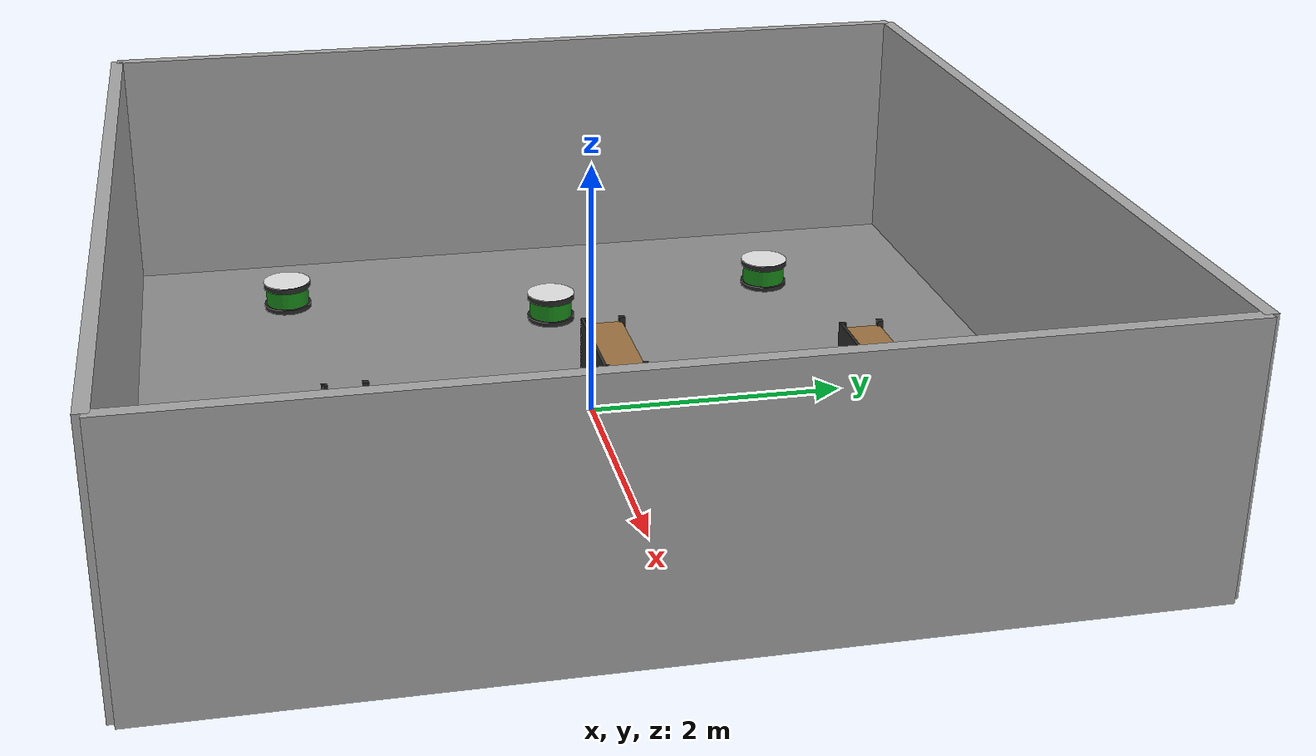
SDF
<?xml version="1.0" ?>
<sdf version="1.8">
  <world name="warehouse_world">

    <plugin filename="gz-sim-physics-system"
            name="gz::sim::systems::Physics"/>
    <plugin filename="gz-sim-user-commands-system"
            name="gz::sim::systems::UserCommands"/>
    <plugin filename="gz-sim-scene-broadcaster-system"
            name="gz::sim::systems::SceneBroadcaster"/>
    <plugin filename="gz-sim-sensors-system"
            name="gz::sim::systems::Sensors">
      <render_engine>ogre2</render_engine>
    </plugin>

    <light name="sun_light" type="directional">
      <pose>0 0 10 0 0 0</pose>
      <cast_shadows>false</cast_shadows>
      <diffuse>1 1 1 1</diffuse>
      <specular>0.2 0.2 0.2 1</specular>
      <direction>0 0 -1</direction>
      <attenuation>
        <range>100</range>
        <constant>0.9</constant>
        <linear>0.01</linear>
        <quadratic>0.001</quadratic>
      </attenuation>
    </light>

    <scene>
      <ambient>0.45 0.45 0.45 1</ambient>
      <background>0.75 0.75 0.75 1</background>
      <shadows>false</shadows>
    </scene>

    <model name="floor">
      <static>true</static>
      <pose>0 0 -0.01 0 0 0</pose>
      <link name="link">
        <collision name="collision">
          <geometry><box><size>7 7 0.02</size></box></geometry>
        </collision>
        <visual name="visual">
          <cast_shadows>false</cast_shadows>
                    <pose>0 0 0.011 0 0 0</pose>
          <geometry><box><size>7 7 0.02</size></box></geometry>
          <material>
            <ambient>0.55 0.55 0.55 1</ambient>
            <diffuse>0.55 0.55 0.55 1</diffuse>
          </material>
        </visual>

        <!-- Visual-only warehouse floor markings (collision unchanged) -->
        <visual name="floor_line_center">
          <cast_shadows>false</cast_shadows>
          <pose>0 0 0.012 0 0 0</pose>
          <geometry><box><size>7 0.05 0.002</size></box></geometry>
          <material><ambient>0.95 0.85 0.15 1</ambient><diffuse>0.95 0.85 0.15 1</diffuse></material>
        </visual>
        <visual name="floor_line_y_pos">
          <cast_shadows>false</cast_shadows>
          <pose>0 1.5 0.012 0 0 0</pose>
          <geometry><box><size>7 0.04 0.002</size></box></geometry>
          <material><ambient>0.95 0.95 0.95 1</ambient><diffuse>0.95 0.95 0.95 1</diffuse></material>
        </visual>
        <visual name="floor_line_y_neg">
          <cast_shadows>false</cast_shadows>
          <pose>0 -1.5 0.012 0 0 0</pose>
          <geometry><box><size>7 0.04 0.002</size></box></geometry>
          <material><ambient>0.95 0.95 0.95 1</ambient><diffuse>0.95 0.95 0.95 1</diffuse></material>
        </visual>
        <!-- Expansion joint seams -->
        <visual name="floor_seam_x_1">
          <cast_shadows>false</cast_shadows>
          <pose>-2.333 0 0.0105 0 0 0</pose>
          <geometry><box><size>0.01 7 0.001</size></box></geometry>
          <material><ambient>0.35 0.35 0.35 1</ambient><diffuse>0.35 0.35 0.35 1</diffuse></material>
        </visual>
        <visual name="floor_seam_x_2">
          <cast_shadows>false</cast_shadows>
          <pose>0 0 0.0105 0 0 0</pose>
          <geometry><box><size>0.01 7 0.001</size></box></geometry>
          <material><ambient>0.35 0.35 0.35 1</ambient><diffuse>0.35 0.35 0.35 1</diffuse></material>
        </visual>
        <visual name="floor_seam_x_3">
          <cast_shadows>false</cast_shadows>
          <pose>2.333 0 0.0105 0 0 0</pose>
          <geometry><box><size>0.01 7 0.001</size></box></geometry>
          <material><ambient>0.35 0.35 0.35 1</ambient><diffuse>0.35 0.35 0.35 1</diffuse></material>
        </visual>
</link>
    </model>

    <model name="wall_back">
      <static>true</static>
      <pose>0 3.5 1.0 0 0 0</pose>
      <link name="link">
        <collision name="collision"><geometry><box><size>7 0.1 2.0</size></box></geometry></collision>
        <visual name="visual">
          <cast_shadows>false</cast_shadows>
          <geometry><box><size>7 0.1 2.0</size></box></geometry>
          <material>
            <ambient>0.65 0.65 0.65 0.95</ambient>
            <diffuse>0.65 0.65 0.65 0.95</diffuse>
          </material>
        </visual>
      </link>
    </model>
    <model name="wall_front">
      <static>true</static>
      <pose>0 -3.5 1.0 0 0 0</pose>
      <link name="link">
        <collision name="collision"><geometry><box><size>7 0.1 2.0</size></box></geometry></collision>
        <visual name="visual">
          <cast_shadows>false</cast_shadows>
          <geometry><box><size>7 0.1 2.0</size></box></geometry>
          <material>
            <ambient>0.65 0.65 0.65 0.95</ambient>
            <diffuse>0.65 0.65 0.65 0.95</diffuse>
          </material>
        </visual>
      </link>
    </model>
    <model name="wall_left">
      <static>true</static>
      <pose>-3.5 0 1.0 0 0 0</pose>
      <link name="link">
        <collision name="collision"><geometry><box><size>0.1 7 2.0</size></box></geometry></collision>
        <visual name="visual">
          <cast_shadows>false</cast_shadows>
          <geometry><box><size>0.1 7 2.0</size></box></geometry>
          <material>
            <ambient>0.65 0.65 0.65 0.95</ambient>
            <diffuse>0.65 0.65 0.65 0.95</diffuse>
          </material>
        </visual>
      </link>
    </model>
    <model name="wall_right">
      <static>true</static>
      <pose>3.5 0 1.0 0 0 0</pose>
      <link name="link">
        <collision name="collision"><geometry><box><size>0.1 7 2.0</size></box></geometry></collision>
        <visual name="visual">
          <cast_shadows>false</cast_shadows>
          <geometry><box><size>0.1 7 2.0</size></box></geometry>
          <material>
            <ambient>0.65 0.65 0.65 0.95</ambient>
            <diffuse>0.65 0.65 0.65 0.95</diffuse>
          </material>
        </visual>
      </link>
    </model>

    <model name="shelf_1">
      <static>true</static>
      <pose>2.2 1.5 0.7 0 0 0</pose>
      <link name="link">
        <collision name="collision"><geometry><box><size>0.8 0.3 1.4</size></box></geometry></collision>
        <!-- Visual-only "warehouse shelf" (collision remains unchanged to avoid remapping). -->
        <visual name="shelf_back_panel">
          <cast_shadows>false</cast_shadows>
          <pose>0 -0.14 0 0 0 0</pose>
          <geometry><box><size>0.8 0.02 1.4</size></box></geometry>
          <material><ambient>0.18 0.18 0.18 1</ambient><diffuse>0.18 0.18 0.18 1</diffuse></material>
        </visual>
        <visual name="shelf_post_fl">
          <cast_shadows>false</cast_shadows>
          <pose>0.38 0.13 0 0 0 0</pose>
          <geometry><box><size>0.04 0.04 1.4</size></box></geometry>
          <material><ambient>0.15 0.15 0.15 1</ambient><diffuse>0.15 0.15 0.15 1</diffuse></material>
        </visual>
        <visual name="shelf_post_fr">
          <cast_shadows>false</cast_shadows>
          <pose>0.38 -0.13 0 0 0 0</pose>
          <geometry><box><size>0.04 0.04 1.4</size></box></geometry>
          <material><ambient>0.15 0.15 0.15 1</ambient><diffuse>0.15 0.15 0.15 1</diffuse></material>
        </visual>
        <visual name="shelf_post_bl">
          <cast_shadows>false</cast_shadows>
          <pose>-0.38 0.13 0 0 0 0</pose>
          <geometry><box><size>0.04 0.04 1.4</size></box></geometry>
          <material><ambient>0.15 0.15 0.15 1</ambient><diffuse>0.15 0.15 0.15 1</diffuse></material>
        </visual>
        <visual name="shelf_post_br">
          <cast_shadows>false</cast_shadows>
          <pose>-0.38 -0.13 0 0 0 0</pose>
          <geometry><box><size>0.04 0.04 1.4</size></box></geometry>
          <material><ambient>0.15 0.15 0.15 1</ambient><diffuse>0.15 0.15 0.15 1</diffuse></material>
        </visual>
        <visual name="shelf_board_bottom">
          <cast_shadows>false</cast_shadows>
          <pose>0 0 -0.65 0 0 0</pose>
          <geometry><box><size>0.76 0.26 0.03</size></box></geometry>
          <material><ambient>0.62 0.45 0.25 1</ambient><diffuse>0.62 0.45 0.25 1</diffuse></material>
        </visual>
        <visual name="shelf_board_mid">
          <cast_shadows>false</cast_shadows>
          <pose>0 0 0.00 0 0 0</pose>
          <geometry><box><size>0.76 0.26 0.03</size></box></geometry>
          <material><ambient>0.62 0.45 0.25 1</ambient><diffuse>0.62 0.45 0.25 1</diffuse></material>
        </visual>
        <visual name="shelf_board_top">
          <cast_shadows>false</cast_shadows>
          <pose>0 0 0.65 0 0 0</pose>
          <geometry><box><size>0.76 0.26 0.03</size></box></geometry>
          <material><ambient>0.62 0.45 0.25 1</ambient><diffuse>0.62 0.45 0.25 1</diffuse></material>
        </visual>

        <!-- Board collisions (inside the shelf footprint) so packages don't fall through -->
        <collision name="shelf_board_bottom_collision">
          <pose>0 0 -0.65 0 0 0</pose>
          <geometry><box><size>0.76 0.26 0.03</size></box></geometry>
        </collision>
        <collision name="shelf_board_mid_collision">
          <pose>0 0 0.00 0 0 0</pose>
          <geometry><box><size>0.76 0.26 0.03</size></box></geometry>
        </collision>
        <collision name="shelf_board_top_collision">
          <pose>0 0 0.65 0 0 0</pose>
          <geometry><box><size>0.76 0.26 0.03</size></box></geometry>
        </collision>
      </link>
    </model>

    <model name="shelf_2">
      <static>true</static>
      <pose>1.8 -0.2 0.7 0 0 0</pose>
      <link name="link">
        <collision name="collision"><geometry><box><size>0.8 0.3 1.4</size></box></geometry></collision>
        <!-- Visual-only "warehouse shelf" (collision remains unchanged to avoid remapping). -->
        <visual name="shelf_back_panel">
          <cast_shadows>false</cast_shadows>
          <pose>0 -0.14 0 0 0 0</pose>
          <geometry><box><size>0.8 0.02 1.4</size></box></geometry>
          <material><ambient>0.18 0.18 0.18 1</ambient><diffuse>0.18 0.18 0.18 1</diffuse></material>
        </visual>
        <visual name="shelf_post_fl">
          <cast_shadows>false</cast_shadows>
          <pose>0.38 0.13 0 0 0 0</pose>
          <geometry><box><size>0.04 0.04 1.4</size></box></geometry>
          <material><ambient>0.15 0.15 0.15 1</ambient><diffuse>0.15 0.15 0.15 1</diffuse></material>
        </visual>
        <visual name="shelf_post_fr">
          <cast_shadows>false</cast_shadows>
          <pose>0.38 -0.13 0 0 0 0</pose>
          <geometry><box><size>0.04 0.04 1.4</size></box></geometry>
          <material><ambient>0.15 0.15 0.15 1</ambient><diffuse>0.15 0.15 0.15 1</diffuse></material>
        </visual>
        <visual name="shelf_post_bl">
          <cast_shadows>false</cast_shadows>
          <pose>-0.38 0.13 0 0 0 0</pose>
          <geometry><box><size>0.04 0.04 1.4</size></box></geometry>
          <material><ambient>0.15 0.15 0.15 1</ambient><diffuse>0.15 0.15 0.15 1</diffuse></material>
        </visual>
        <visual name="shelf_post_br">
          <cast_shadows>false</cast_shadows>
          <pose>-0.38 -0.13 0 0 0 0</pose>
          <geometry><box><size>0.04 0.04 1.4</size></box></geometry>
          <material><ambient>0.15 0.15 0.15 1</ambient><diffuse>0.15 0.15 0.15 1</diffuse></material>
        </visual>
        <visual name="shelf_board_bottom">
          <cast_shadows>false</cast_shadows>
          <pose>0 0 -0.65 0 0 0</pose>
          <geometry><box><size>0.76 0.26 0.03</size></box></geometry>
          <material><ambient>0.62 0.45 0.25 1</ambient><diffuse>0.62 0.45 0.25 1</diffuse></material>
        </visual>
        <visual name="shelf_board_mid">
          <cast_shadows>false</cast_shadows>
          <pose>0 0 0.00 0 0 0</pose>
          <geometry><box><size>0.76 0.26 0.03</size></box></geometry>
          <material><ambient>0.62 0.45 0.25 1</ambient><diffuse>0.62 0.45 0.25 1</diffuse></material>
        </visual>
        <visual name="shelf_board_top">
          <cast_shadows>false</cast_shadows>
          <pose>0 0 0.65 0 0 0</pose>
          <geometry><box><size>0.76 0.26 0.03</size></box></geometry>
          <material><ambient>0.62 0.45 0.25 1</ambient><diffuse>0.62 0.45 0.25 1</diffuse></material>
        </visual>

        <!-- Board collisions (inside the shelf footprint) so packages don't fall through -->
        <collision name="shelf_board_bottom_collision">
          <pose>0 0 -0.65 0 0 0</pose>
          <geometry><box><size>0.76 0.26 0.03</size></box></geometry>
        </collision>
        <collision name="shelf_board_mid_collision">
          <pose>0 0 0.00 0 0 0</pose>
          <geometry><box><size>0.76 0.26 0.03</size></box></geometry>
        </collision>
        <collision name="shelf_board_top_collision">
          <pose>0 0 0.65 0 0 0</pose>
          <geometry><box><size>0.76 0.26 0.03</size></box></geometry>
        </collision>
      </link>
    </model>

    <model name="shelf_3">
      <static>true</static>
      <pose>2.5 -2.0 0.7 0 0 0</pose>
      <link name="link">
        <collision name="collision"><geometry><box><size>0.8 0.3 1.4</size></box></geometry></collision>
        <!-- Visual-only "warehouse shelf" (collision remains unchanged to avoid remapping). -->
        <visual name="shelf_back_panel">
          <cast_shadows>false</cast_shadows>
          <pose>0 -0.14 0 0 0 0</pose>
          <geometry><box><size>0.8 0.02 1.4</size></box></geometry>
          <material><ambient>0.18 0.18 0.18 1</ambient><diffuse>0.18 0.18 0.18 1</diffuse></material>
        </visual>
        <visual name="shelf_post_fl">
          <cast_shadows>false</cast_shadows>
          <pose>0.38 0.13 0 0 0 0</pose>
          <geometry><box><size>0.04 0.04 1.4</size></box></geometry>
          <material><ambient>0.15 0.15 0.15 1</ambient><diffuse>0.15 0.15 0.15 1</diffuse></material>
        </visual>
        <visual name="shelf_post_fr">
          <cast_shadows>false</cast_shadows>
          <pose>0.38 -0.13 0 0 0 0</pose>
          <geometry><box><size>0.04 0.04 1.4</size></box></geometry>
          <material><ambient>0.15 0.15 0.15 1</ambient><diffuse>0.15 0.15 0.15 1</diffuse></material>
        </visual>
        <visual name="shelf_post_bl">
          <cast_shadows>false</cast_shadows>
          <pose>-0.38 0.13 0 0 0 0</pose>
          <geometry><box><size>0.04 0.04 1.4</size></box></geometry>
          <material><ambient>0.15 0.15 0.15 1</ambient><diffuse>0.15 0.15 0.15 1</diffuse></material>
        </visual>
        <visual name="shelf_post_br">
          <cast_shadows>false</cast_shadows>
          <pose>-0.38 -0.13 0 0 0 0</pose>
          <geometry><box><size>0.04 0.04 1.4</size></box></geometry>
          <material><ambient>0.15 0.15 0.15 1</ambient><diffuse>0.15 0.15 0.15 1</diffuse></material>
        </visual>
        <visual name="shelf_board_bottom">
          <cast_shadows>false</cast_shadows>
          <pose>0 0 -0.65 0 0 0</pose>
          <geometry><box><size>0.76 0.26 0.03</size></box></geometry>
          <material><ambient>0.62 0.45 0.25 1</ambient><diffuse>0.62 0.45 0.25 1</diffuse></material>
        </visual>
        <visual name="shelf_board_mid">
          <cast_shadows>false</cast_shadows>
          <pose>0 0 0.00 0 0 0</pose>
          <geometry><box><size>0.76 0.26 0.03</size></box></geometry>
          <material><ambient>0.62 0.45 0.25 1</ambient><diffuse>0.62 0.45 0.25 1</diffuse></material>
        </visual>
        <visual name="shelf_board_top">
          <cast_shadows>false</cast_shadows>
          <pose>0 0 0.65 0 0 0</pose>
          <geometry><box><size>0.76 0.26 0.03</size></box></geometry>
          <material><ambient>0.62 0.45 0.25 1</ambient><diffuse>0.62 0.45 0.25 1</diffuse></material>
        </visual>

        <!-- Board collisions (inside the shelf footprint) so packages don't fall through -->
        <collision name="shelf_board_bottom_collision">
          <pose>0 0 -0.65 0 0 0</pose>
          <geometry><box><size>0.76 0.26 0.03</size></box></geometry>
        </collision>
        <collision name="shelf_board_mid_collision">
          <pose>0 0 0.00 0 0 0</pose>
          <geometry><box><size>0.76 0.26 0.03</size></box></geometry>
        </collision>
        <collision name="shelf_board_top_collision">
          <pose>0 0 0.65 0 0 0</pose>
          <geometry><box><size>0.76 0.26 0.03</size></box></geometry>
        </collision>
      </link>
    </model>

    <model name="delivery_1">
      <static>true</static>
      <pose>-2.2 2.0 0.7 0 0 0</pose>
      <link name="link">
        <collision name="collision">
          <geometry><cylinder><radius>0.18</radius><length>1.4</length></cylinder></geometry>
        </collision>
        <!-- Visual-only delivery station (collision remains unchanged to avoid remapping). -->
        <!-- Short station column (visual only) so the delivered package stays visible -->
        <visual name="station_column_short">
          <cast_shadows>false</cast_shadows>
          <pose>0 0 -0.575 0 0 0</pose>
          <geometry><cylinder><radius>0.18</radius><length>0.15</length></cylinder></geometry>
          <material><ambient>0.10 0.55 0.10 1</ambient><diffuse>0.10 0.55 0.10 1</diffuse></material>
        </visual>
        <collision name="station_column_short_collision">
          <pose>0 0 -0.575 0 0 0</pose>
          <geometry><cylinder><radius>0.18</radius><length>0.15</length></cylinder></geometry>
        </collision>
        <visual name="station_base">
          <cast_shadows>false</cast_shadows>
          <pose>0 0 -0.675 0 0 0</pose>
          <geometry><cylinder><radius>0.2</radius><length>0.05</length></cylinder></geometry>
          <material><ambient>0.16 0.16 0.16 1</ambient><diffuse>0.16 0.16 0.16 1</diffuse></material>
        </visual>
        <visual name="station_top_ring">
          <cast_shadows>false</cast_shadows>
          <pose>0 0 -0.475 0 0 0</pose>
          <geometry><cylinder><radius>0.2</radius><length>0.05</length></cylinder></geometry>
          <material><ambient>0.16 0.16 0.16 1</ambient><diffuse>0.16 0.16 0.16 1</diffuse></material>
        </visual>
        <visual name="station_target_disc">
          <cast_shadows>false</cast_shadows>
          <pose>0 0 -0.45 0 0 0</pose>
          <geometry><cylinder><radius>0.2</radius><length>0.002</length></cylinder></geometry>
          <material><ambient>0.90 0.90 0.90 1</ambient><diffuse>0.90 0.90 0.90 1</diffuse></material>
        </visual>
      </link>
    </model>

    <model name="delivery_2">
      <static>true</static>
      <pose>-1.8 0.0 0.7 0 0 0</pose>
      <link name="link">
        <collision name="collision">
          <geometry><cylinder><radius>0.18</radius><length>1.4</length></cylinder></geometry>
        </collision>
        <!-- Visual-only delivery station (collision remains unchanged to avoid remapping). -->
        <!-- Short station column (visual only) so the delivered package stays visible -->
        <visual name="station_column_short">
          <cast_shadows>false</cast_shadows>
          <pose>0 0 -0.575 0 0 0</pose>
          <geometry><cylinder><radius>0.18</radius><length>0.15</length></cylinder></geometry>
          <material><ambient>0.10 0.55 0.10 1</ambient><diffuse>0.10 0.55 0.10 1</diffuse></material>
        </visual>
        <collision name="station_column_short_collision">
          <pose>0 0 -0.575 0 0 0</pose>
          <geometry><cylinder><radius>0.18</radius><length>0.15</length></cylinder></geometry>
        </collision>
        <visual name="station_base">
          <cast_shadows>false</cast_shadows>
          <pose>0 0 -0.675 0 0 0</pose>
          <geometry><cylinder><radius>0.2</radius><length>0.05</length></cylinder></geometry>
          <material><ambient>0.16 0.16 0.16 1</ambient><diffuse>0.16 0.16 0.16 1</diffuse></material>
        </visual>
        <visual name="station_top_ring">
          <cast_shadows>false</cast_shadows>
          <pose>0 0 -0.475 0 0 0</pose>
          <geometry><cylinder><radius>0.2</radius><length>0.05</length></cylinder></geometry>
          <material><ambient>0.16 0.16 0.16 1</ambient><diffuse>0.16 0.16 0.16 1</diffuse></material>
        </visual>
        <visual name="station_target_disc">
          <cast_shadows>false</cast_shadows>
          <pose>0 0 -0.45 0 0 0</pose>
          <geometry><cylinder><radius>0.2</radius><length>0.002</length></cylinder></geometry>
          <material><ambient>0.90 0.90 0.90 1</ambient><diffuse>0.90 0.90 0.90 1</diffuse></material>
        </visual>
      </link>
    </model>

    <model name="delivery_3">
      <static>true</static>
      <pose>-2.5 -2.2 0.7 0 0 0</pose>
      <link name="link">
        <collision name="collision">
          <geometry><cylinder><radius>0.18</radius><length>1.4</length></cylinder></geometry>
        </collision>
        <!-- Visual-only delivery station (collision remains unchanged to avoid remapping). -->
        <!-- Short station column (visual only) so the delivered package stays visible -->
        <visual name="station_column_short">
          <cast_shadows>false</cast_shadows>
          <pose>0 0 -0.575 0 0 0</pose>
          <geometry><cylinder><radius>0.18</radius><length>0.15</length></cylinder></geometry>
          <material><ambient>0.10 0.55 0.10 1</ambient><diffuse>0.10 0.55 0.10 1</diffuse></material>
        </visual>
        <collision name="station_column_short_collision">
          <pose>0 0 -0.575 0 0 0</pose>
          <geometry><cylinder><radius>0.18</radius><length>0.15</length></cylinder></geometry>
        </collision>
        <visual name="station_base">
          <cast_shadows>false</cast_shadows>
          <pose>0 0 -0.675 0 0 0</pose>
          <geometry><cylinder><radius>0.2</radius><length>0.05</length></cylinder></geometry>
          <material><ambient>0.16 0.16 0.16 1</ambient><diffuse>0.16 0.16 0.16 1</diffuse></material>
        </visual>
        <visual name="station_top_ring">
          <cast_shadows>false</cast_shadows>
          <pose>0 0 -0.475 0 0 0</pose>
          <geometry><cylinder><radius>0.2</radius><length>0.05</length></cylinder></geometry>
          <material><ambient>0.16 0.16 0.16 1</ambient><diffuse>0.16 0.16 0.16 1</diffuse></material>
        </visual>
        <visual name="station_target_disc">
          <cast_shadows>false</cast_shadows>
          <pose>0 0 -0.45 0 0 0</pose>
          <geometry><cylinder><radius>0.2</radius><length>0.002</length></cylinder></geometry>
          <material><ambient>0.90 0.90 0.90 1</ambient><diffuse>0.90 0.90 0.90 1</diffuse></material>
        </visual>
      </link>
    </model>

  </world>
</sdf>
